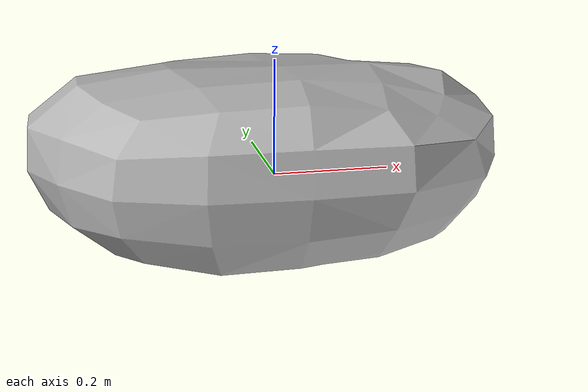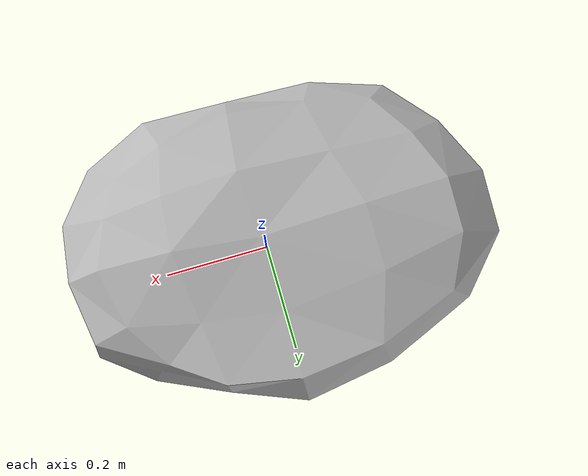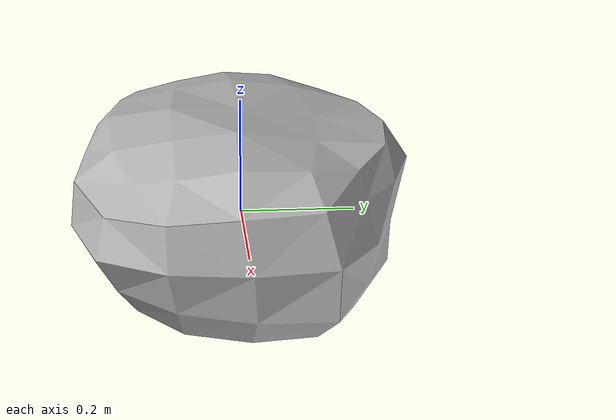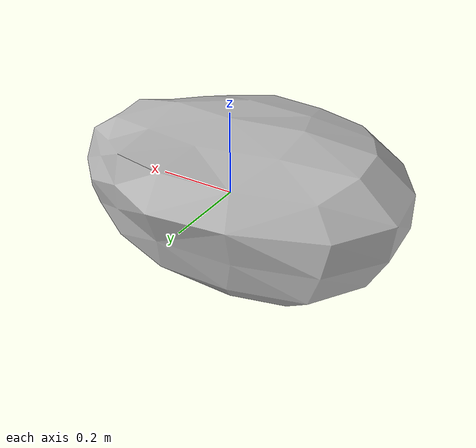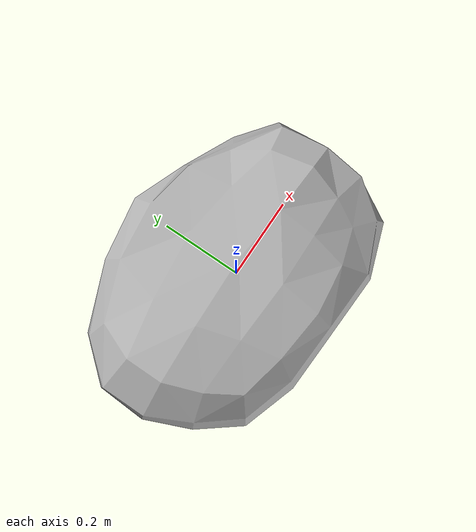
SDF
<?xml version="1.0" ?>
<sdf version="1.5">
  <model name="RockSet_2_static">
    <static>true</static>
    <link name="link">
      <inertial>
        <mass>10.0</mass>
      </inertial>
      <collision name="collision">
        <geometry>
          <mesh>
            <uri>model://RockSet_2/meshes/RockSet.dae</uri>
          </mesh>
        </geometry>
      </collision>
      <visual name="visual">
        <geometry>
          <mesh>
            <uri>model://RockSet_2/meshes/RockSet.dae</uri>
          </mesh>
        </geometry>
      </visual>
    </link>
  </model>
</sdf>
